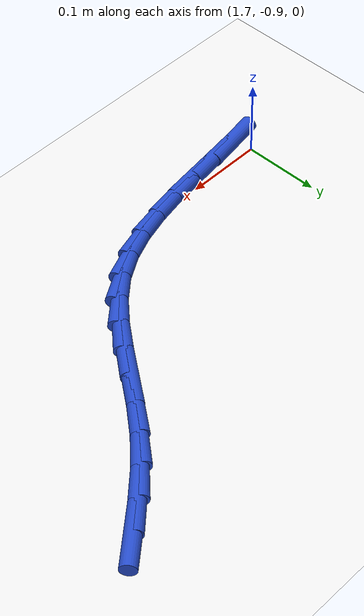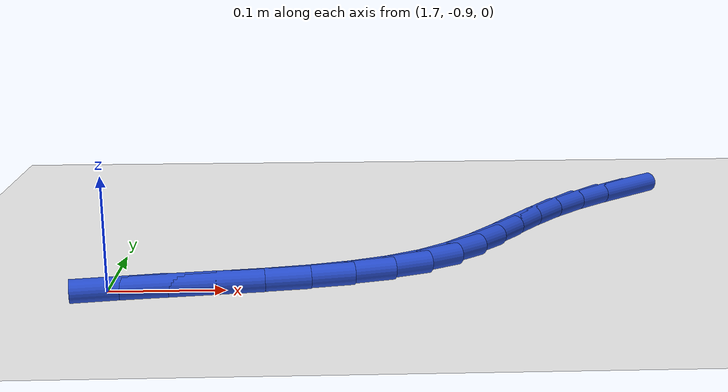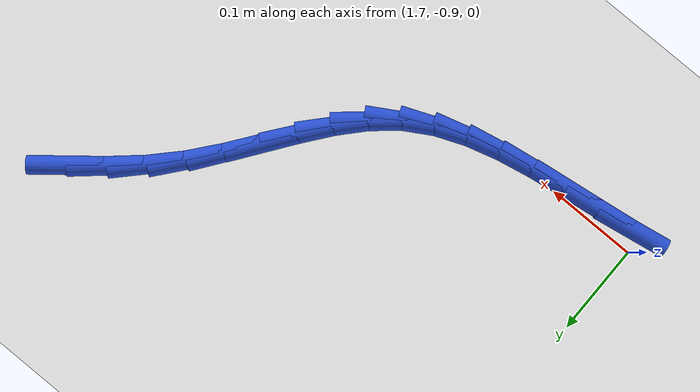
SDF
<sdf version="1.6">
 <world name="default">
  <model name="ground_plane">
   <static>1</static>
   <link name="link">
    <collision name="collision">
     <geometry><plane><normal>0 0 1</normal><size>100 100</size></plane></geometry>
     <surface><friction><ode><mu>100</mu><mu2>50</mu2></ode></friction></surface>
    </collision>
    <visual name="visual">
     <cast_shadows>0</cast_shadows>
     <geometry><plane><normal>0 0 1</normal><size>100 100</size></plane></geometry>
     <material>
      <script><uri>file://media/materials/scripts/gazebo.material</uri><name>Gazebo/WhiteGlow</name></script>
     </material>
    </visual>
   </link>
  </model>
  <model name="line">
   <link name="link_117">
    <pose>2.205165589882631 -0.5979475503504926 0.01 0 1.57 0.6790853297339872</pose>
    <collision name="collision">
     <geometry><cylinder><radius>0.01</radius><length>0.08</length></cylinder></geometry>
    </collision>
    <visual name="visual">
     <material>
      <script><name>Gazebo/Blue</name><uri>file://media/materials/scripts/gazebo.material</uri></script>
     </material>
     <geometry><cylinder><radius>0.01</radius><length>0.08</length></cylinder></geometry>
    </visual>
   </link>
   <link name="link_118">
    <pose>2.172963432695306 -0.6239395115194923 0.01 0 1.57 0.7221045068711277</pose>
    <collision name="collision">
     <geometry><cylinder><radius>0.01</radius><length>0.08</length></cylinder></geometry>
    </collision>
    <visual name="visual">
     <material>
      <script><name>Gazebo/Blue</name><uri>file://media/materials/scripts/gazebo.material</uri></script>
     </material>
     <geometry><cylinder><radius>0.01</radius><length>0.08</length></cylinder></geometry>
    </visual>
   </link>
   <link name="link_119">
    <pose>2.141717316035019 -0.6514610343781486 0.01 0 1.57 0.8029488218405137</pose>
    <collision name="collision">
     <geometry><cylinder><radius>0.01</radius><length>0.08</length></cylinder></geometry>
    </collision>
    <visual name="visual">
     <material>
      <script><name>Gazebo/Blue</name><uri>file://media/materials/scripts/gazebo.material</uri></script>
     </material>
     <geometry><cylinder><radius>0.01</radius><length>0.08</length></cylinder></geometry>
    </visual>
   </link>
   <link name="link_120">
    <pose>2.113134542545065 -0.6810651306111558 0.01 0 1.57 0.8870683156257085</pose>
    <collision name="collision">
     <geometry><cylinder><radius>0.01</radius><length>0.08</length></cylinder></geometry>
    </collision>
    <visual name="visual">
     <material>
      <script><name>Gazebo/Blue</name><uri>file://media/materials/scripts/gazebo.material</uri></script>
     </material>
     <geometry><cylinder><radius>0.01</radius><length>0.08</length></cylinder></geometry>
    </visual>
   </link>
   <link name="link_121">
    <pose>2.0875564663321606 -0.712455207280891 0.01 0 1.57 0.9354005316951054</pose>
    <collision name="collision">
     <geometry><cylinder><radius>0.01</radius><length>0.08</length></cylinder></geometry>
    </collision>
    <visual name="visual">
     <material>
      <script><name>Gazebo/Blue</name><uri>file://media/materials/scripts/gazebo.material</uri></script>
     </material>
     <geometry><cylinder><radius>0.01</radius><length>0.08</length></cylinder></geometry>
    </visual>
   </link>
   <link name="link_122">
    <pose>2.063943945605935 -0.7444760185328442 0.01 0 1.57 0.9447384525493806</pose>
    <collision name="collision">
     <geometry><cylinder><radius>0.01</radius><length>0.08</length></cylinder></geometry>
    </collision>
    <visual name="visual">
     <material>
      <script><name>Gazebo/Blue</name><uri>file://media/materials/scripts/gazebo.material</uri></script>
     </material>
     <geometry><cylinder><radius>0.01</radius><length>0.08</length></cylinder></geometry>
    </visual>
   </link>
   <link name="link_123">
    <pose>2.041196666146086 -0.7759342699493005 0.01 0 1.57 0.9122650941338574</pose>
    <collision name="collision">
     <geometry><cylinder><radius>0.01</radius><length>0.08</length></cylinder></geometry>
    </collision>
    <visual name="visual">
     <material>
      <script><name>Gazebo/Blue</name><uri>file://media/materials/scripts/gazebo.material</uri></script>
     </material>
     <geometry><cylinder><radius>0.01</radius><length>0.08</length></cylinder></geometry>
    </visual>
   </link>
   <link name="link_124">
    <pose>2.0182143137323116 -0.8056366671125452 0.01 0 1.57 0.8330507587996867</pose>
    <collision name="collision">
     <geometry><cylinder><radius>0.01</radius><length>0.08</length></cylinder></geometry>
    </collision>
    <visual name="visual">
     <material>
      <script><name>Gazebo/Blue</name><uri>file://media/materials/scripts/gazebo.material</uri></script>
     </material>
     <geometry><cylinder><radius>0.01</radius><length>0.08</length></cylinder></geometry>
    </visual>
   </link>
   <link name="link_125">
    <pose>1.9938965741443095 -0.8323899156048636 0.01 0 1.57 0.701675878820855</pose>
    <collision name="collision">
     <geometry><cylinder><radius>0.01</radius><length>0.08</length></cylinder></geometry>
    </collision>
    <visual name="visual">
     <material>
      <script><name>Gazebo/Blue</name><uri>file://media/materials/scripts/gazebo.material</uri></script>
     </material>
     <geometry><cylinder><radius>0.01</radius><length>0.08</length></cylinder></geometry>
    </visual>
   </link>
   <link name="link_126">
    <pose>1.9671431609052115 -0.8550007571235967 0.01 0 1.57 0.532803410497529</pose>
    <collision name="collision">
     <geometry><cylinder><radius>0.01</radius><length>0.08</length></cylinder></geometry>
    </collision>
    <visual name="visual">
     <material>
      <script><name>Gazebo/Blue</name><uri>file://media/materials/scripts/gazebo.material</uri></script>
     </material>
     <geometry><cylinder><radius>0.01</radius><length>0.08</length></cylinder></geometry>
    </visual>
   </link>
   <link name="link_127">
    <pose>1.937163675761541 -0.8726793308202054 0.01 0 1.57 0.3855148009146134</pose>
    <collision name="collision">
     <geometry><cylinder><radius>0.01</radius><length>0.08</length></cylinder></geometry>
    </collision>
    <visual name="visual">
     <material>
      <script><name>Gazebo/Blue</name><uri>file://media/materials/scripts/gazebo.material</uri></script>
     </material>
     <geometry><cylinder><radius>0.01</radius><length>0.08</length></cylinder></geometry>
    </visual>
   </link>
   <link name="link_128">
    <pose>1.9042451818648343 -0.8860383628271479 0.01 0 1.57 0.27465223486807716</pose>
    <collision name="collision">
     <geometry><cylinder><radius>0.01</radius><length>0.08</length></cylinder></geometry>
    </collision>
    <visual name="visual">
     <material>
      <script><name>Gazebo/Blue</name><uri>file://media/materials/scripts/gazebo.material</uri></script>
     </material>
     <geometry><cylinder><radius>0.01</radius><length>0.08</length></cylinder></geometry>
    </visual>
   </link>
   <link name="link_129">
    <pose>1.8689087647331426 -0.8959952182393623 0.01 0 1.57 0.19805123945147643</pose>
    <collision name="collision">
     <geometry><cylinder><radius>0.01</radius><length>0.08</length></cylinder></geometry>
    </collision>
    <visual name="visual">
     <material>
      <script><name>Gazebo/Blue</name><uri>file://media/materials/scripts/gazebo.material</uri></script>
     </material>
     <geometry><cylinder><radius>0.01</radius><length>0.08</length></cylinder></geometry>
    </visual>
   </link>
   <link name="link_130">
    <pose>1.831675509884516 -0.903467262151787 0.01 0 1.57 0.15175732347561763</pose>
    <collision name="collision">
     <geometry><cylinder><radius>0.01</radius><length>0.08</length></cylinder></geometry>
    </collision>
    <visual name="visual">
     <material>
      <script><name>Gazebo/Blue</name><uri>file://media/materials/scripts/gazebo.material</uri></script>
     </material>
     <geometry><cylinder><radius>0.01</radius><length>0.08</length></cylinder></geometry>
    </visual>
   </link>
   <link name="link_131">
    <pose>1.793066502837006 -0.9093718596593603 0.01 0 1.57 0.13236960530117</pose>
    <collision name="collision">
     <geometry><cylinder><radius>0.01</radius><length>0.08</length></cylinder></geometry>
    </collision>
    <visual name="visual">
     <material>
      <script><name>Gazebo/Blue</name><uri>file://media/materials/scripts/gazebo.material</uri></script>
     </material>
     <geometry><cylinder><radius>0.01</radius><length>0.08</length></cylinder></geometry>
    </visual>
   </link>
   <link name="link_132">
    <pose>1.7536028291086627 -0.9146263758570199 0.01 0 1.57 0.13786805634000998</pose>
    <collision name="collision">
     <geometry><cylinder><radius>0.01</radius><length>0.08</length></cylinder></geometry>
    </collision>
    <visual name="visual">
     <material>
      <script><name>Gazebo/Blue</name><uri>file://media/materials/scripts/gazebo.material</uri></script>
     </material>
     <geometry><cylinder><radius>0.01</radius><length>0.08</length></cylinder></geometry>
    </visual>
   </link>
   <link name="link_133">
    <pose>1.7138055742175364 -0.9201481758397043 0.01 0 1.57 0.16772245587960635</pose>
    <collision name="collision">
     <geometry><cylinder><radius>0.01</radius><length>0.08</length></cylinder></geometry>
    </collision>
    <visual name="visual">
     <material>
      <script><name>Gazebo/Blue</name><uri>file://media/materials/scripts/gazebo.material</uri></script>
     </material>
     <geometry><cylinder><radius>0.01</radius><length>0.08</length></cylinder></geometry>
    </visual>
   </link>
  </model>
 </world>
</sdf>
